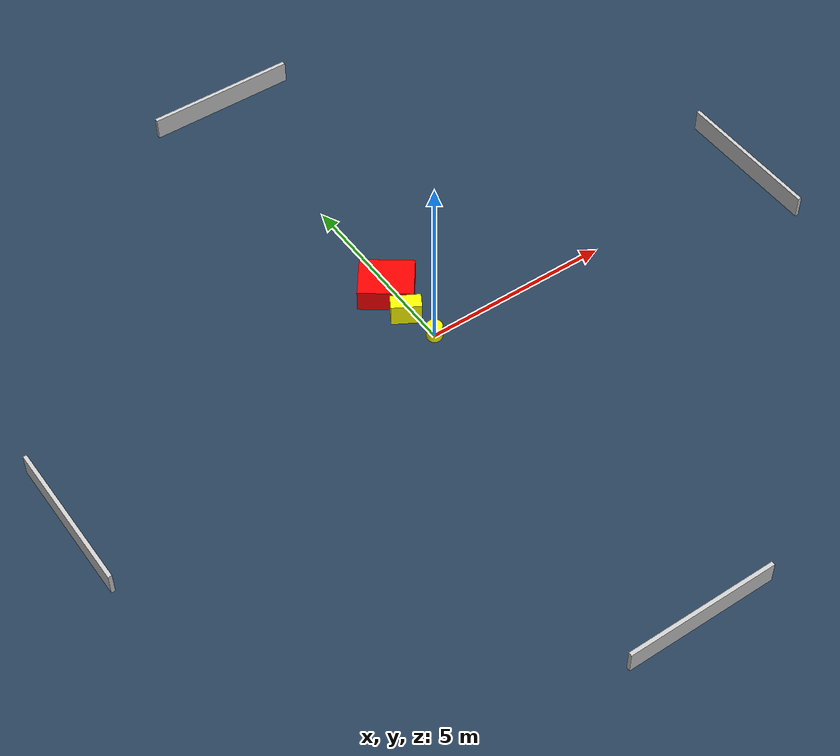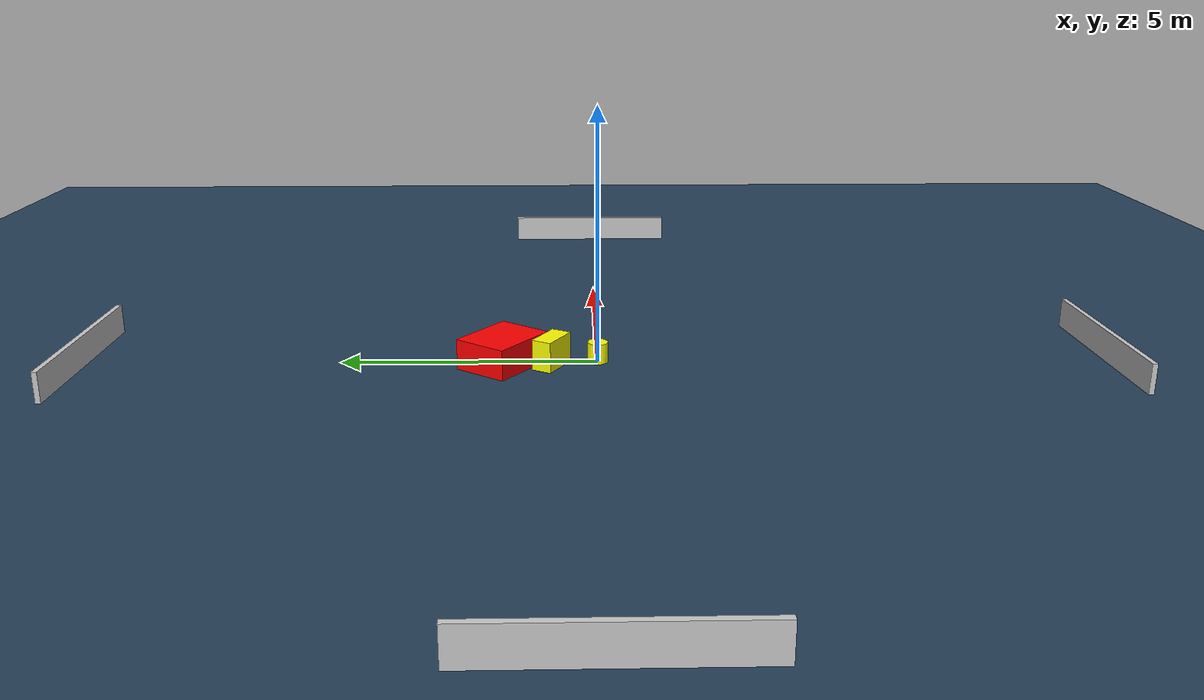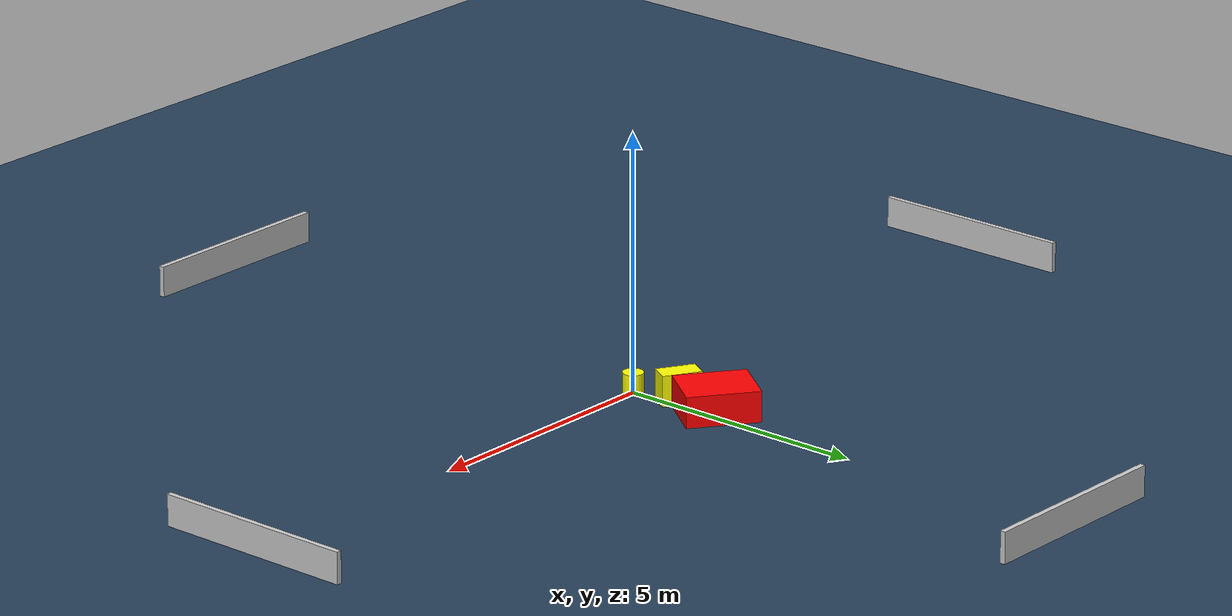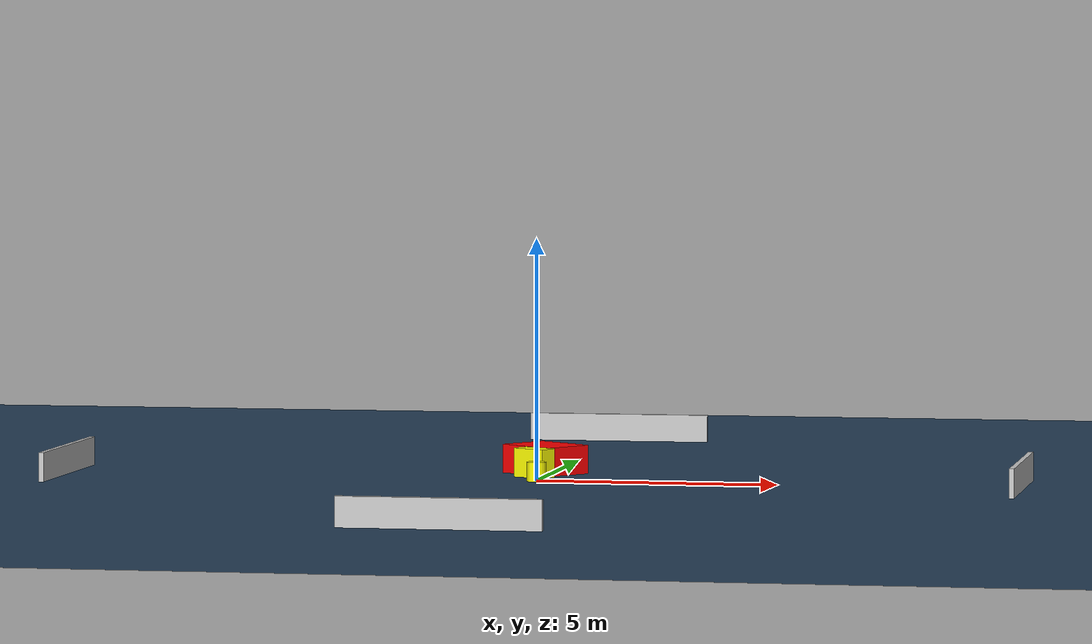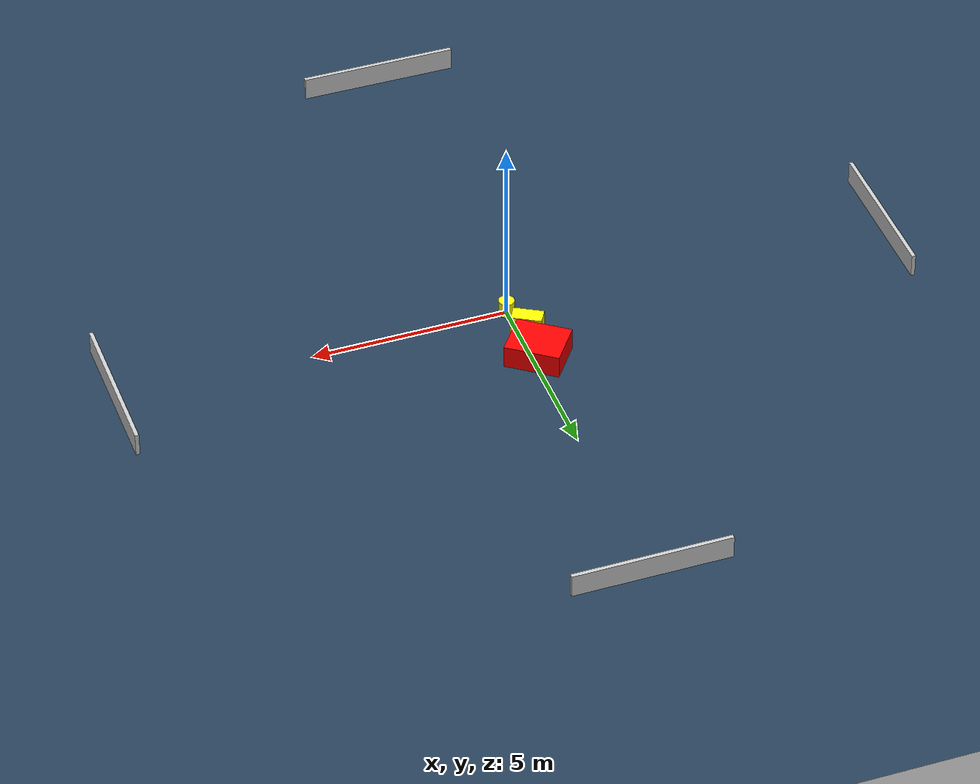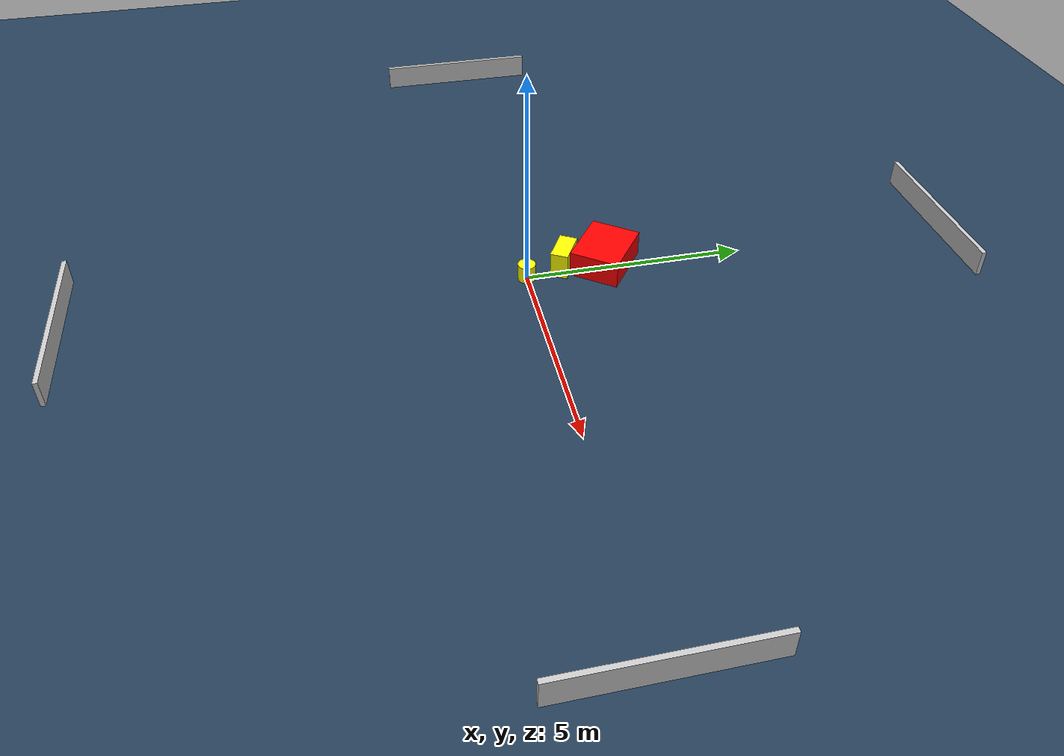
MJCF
<?xml version="1.0" ?>
<mujoco model="generated_environment">
  <option timestep="0.01" integrator="RK4" cone="elliptic"/>
  <default>
    <geom density="1"/>
  </default>
  <asset>
    <texture builtin="gradient" height="3072" name="skybox" rgb1="0.3 0.5 0.7" rgb2="0 0 0" type="skybox" width="512"/>
    <texture builtin="checker" height="300" name="groundplane" rgb1="0.2 0.3 0.4" rgb2="0.1 0.2 0.3" type="2d" width="300"/>
    <material name="groundplane" reflectance="0.2" texrepeat="5 5" texture="groundplane"/>
  </asset>
  <worldbody>
    <light dir="0 0 -1" directional="true" pos="0 0 1.5"/>
    <geom condim="3" friction="0.5 0.005 0.001" material="groundplane" name="floor" pos="0 0 0" size="0 0 0.05" type="plane"/>
    <body name="walls">
      <geom name="wall_1" condim="4" pos="-10.0 0.0 0.3" rgba="0.800000011920929 0.800000011920929 0.800000011920929 1.0" size="0.05 2.0 0.3" type="box"/>
      <geom name="wall_2" condim="4" pos="10.0 0.0 0.3" rgba="0.800000011920929 0.800000011920929 0.800000011920929 1.0" size="0.05 2.0 0.3" type="box"/>
      <geom name="wall_3" condim="4" pos="0.0 -10.0 0.3" rgba="0.800000011920929 0.800000011920929 0.800000011920929 1.0" size="2.0 0.05 0.3" type="box"/>
      <geom name="wall_4" condim="4" pos="0.0 10.0 0.3" rgba="0.800000011920929 0.800000011920929 0.800000011920929 1.0" size="2.0 0.05 0.3" type="box"/>
    </body>
    <body name="robot">
      <joint name="joint_x" type="slide" pos="0 0 0" axis="1 0 0"/>
      <joint name="joint_y" type="slide" pos="0 0 0" axis="0 1 0"/>
      <geom name="robot" type="cylinder" pos="0.0 0.0 0.2" size="0.2 0.2 0.0" mass="5.0" friction="1.0 0.005 0.0001" condim="4" rgba="1.0 1.0 0.0 1.0"/>
    </body>
    <body name="obstacle_1_movable">
      <geom name="obstacle_1_movable" condim="4" pos="-0.21942078308134352 0.901373825697355 0.3" euler="0 0 330.1472447979084" friction="0.0 0.005 0.001" rgba="1.0 1.0 0.0 1.0" size="0.38692073626890844 0.2016978281732099 0.3" type="box" mass="0.1"/>
      <joint type="free"/>
    </body>
    <body name="obstacle_2_static">
      <geom name="obstacle_2_static" condim="4" pos="-0.15699893864581593 1.845152062811633 0.3" euler="0 0 323.4372110338118" friction="0.0 0.005 0.001" rgba="1.0 0.0 0.0 1.0" size="0.6992884132455823 0.5656399348578524 0.3" type="box"/>
    </body>
  </worldbody>
  <actuator>
    <motor name="actuator_x" joint="joint_x" gear="1" ctrlrange="-1 1"/>
    <motor name="actuator_y" joint="joint_y" gear="1" ctrlrange="-1 1"/>
  </actuator>
</mujoco>
